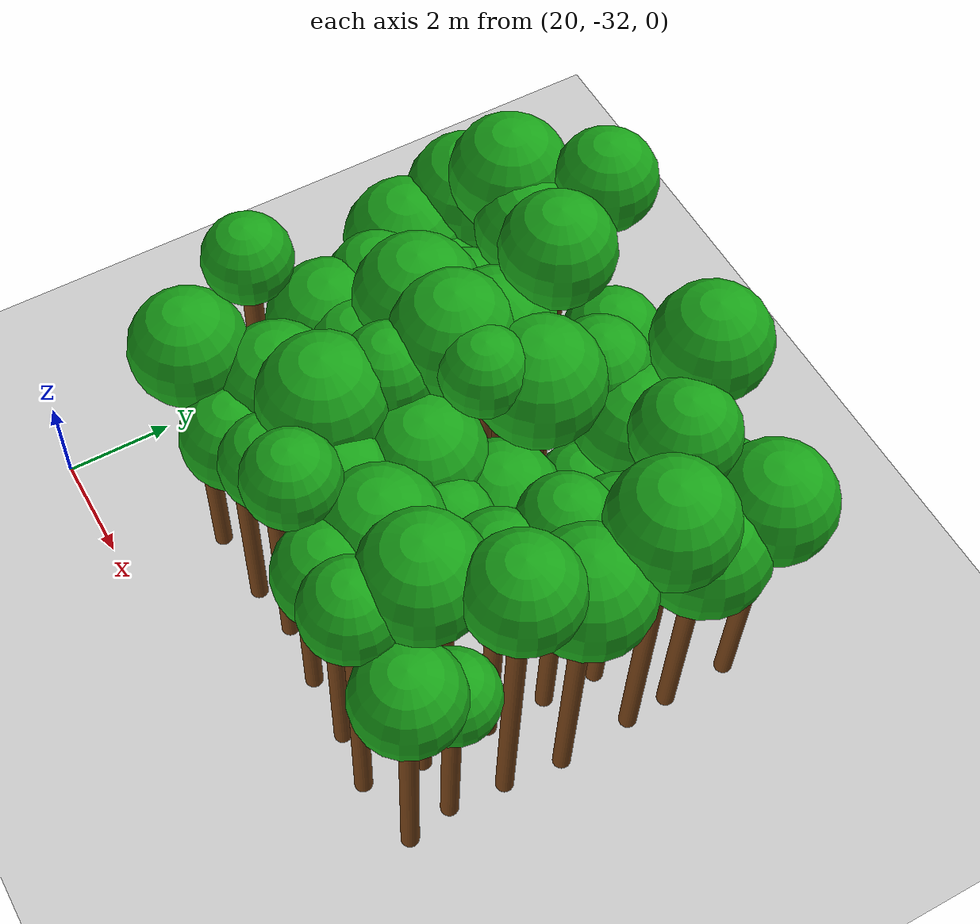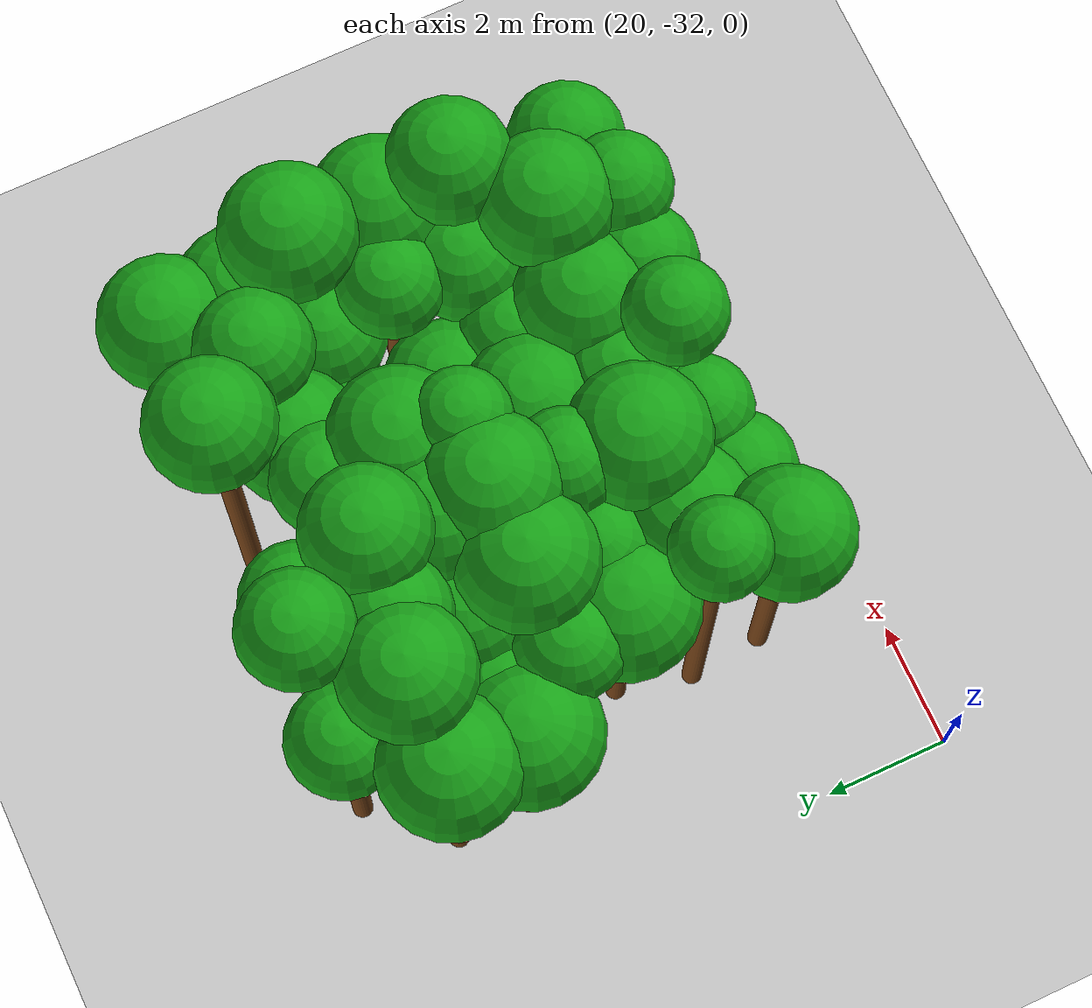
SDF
<sdf version="1.6">
 <world name="forest_world">
  <include><uri>model://sun</uri></include>
  <include><uri>model://ground_plane</uri></include>
  <model name="tree_2566_trunk">
   <static>true</static>
   <pose>21.86 -25.69 2.24 0 0 0</pose>
   <link name="link">
    <collision name="collision">
     <geometry><cylinder><radius>0.16</radius><length>4.47</length></cylinder></geometry>
    </collision>
    <visual name="visual">
     <geometry><cylinder><radius>0.16</radius><length>4.47</length></cylinder></geometry>
     <material><ambient>0.35 0.20 0.05 1</ambient><diffuse>0.45 0.25 0.08 1</diffuse></material>
    </visual>
   </link>
  </model>
  <model name="tree_2566_leaf">
   <static>true</static>
   <pose>21.86 -25.69 5.13 0 0 0</pose>
   <link name="link">
    <collision name="collision"><geometry><sphere><radius>1.10</radius></sphere></geometry></collision>
    <visual name="visual">
     <geometry><sphere><radius>1.10</radius></sphere></geometry>
     <material><ambient>0.05 0.45 0.05 1</ambient><diffuse>0.10 0.65 0.10 1</diffuse></material>
    </visual>
   </link>
  </model>
  <model name="tree_2567_trunk">
   <static>true</static>
   <pose>21.81 -24.48 2.49 0 0 0</pose>
   <link name="link">
    <collision name="collision">
     <geometry><cylinder><radius>0.16</radius><length>4.98</length></cylinder></geometry>
    </collision>
    <visual name="visual">
     <geometry><cylinder><radius>0.16</radius><length>4.98</length></cylinder></geometry>
     <material><ambient>0.35 0.20 0.05 1</ambient><diffuse>0.45 0.25 0.08 1</diffuse></material>
    </visual>
   </link>
  </model>
  <model name="tree_2567_leaf">
   <static>true</static>
   <pose>21.81 -24.48 5.62 0 0 0</pose>
   <link name="link">
    <collision name="collision"><geometry><sphere><radius>1.07</radius></sphere></geometry></collision>
    <visual name="visual">
     <geometry><sphere><radius>1.07</radius></sphere></geometry>
     <material><ambient>0.05 0.45 0.05 1</ambient><diffuse>0.10 0.65 0.10 1</diffuse></material>
    </visual>
   </link>
  </model>
  <model name="tree_2617_trunk">
   <static>true</static>
   <pose>22.75 -30.09 2.72 0 0 0</pose>
   <link name="link">
    <collision name="collision">
     <geometry><cylinder><radius>0.16</radius><length>5.45</length></cylinder></geometry>
    </collision>
    <visual name="visual">
     <geometry><cylinder><radius>0.16</radius><length>5.45</length></cylinder></geometry>
     <material><ambient>0.35 0.20 0.05 1</ambient><diffuse>0.45 0.25 0.08 1</diffuse></material>
    </visual>
   </link>
  </model>
  <model name="tree_2617_leaf">
   <static>true</static>
   <pose>22.75 -30.09 6.03 0 0 0</pose>
   <link name="link">
    <collision name="collision"><geometry><sphere><radius>0.98</radius></sphere></geometry></collision>
    <visual name="visual">
     <geometry><sphere><radius>0.98</radius></sphere></geometry>
     <material><ambient>0.05 0.45 0.05 1</ambient><diffuse>0.10 0.65 0.10 1</diffuse></material>
    </visual>
   </link>
  </model>
  <model name="tree_2618_trunk">
   <static>true</static>
   <pose>22.64 -28.88 3.48 0 0 0</pose>
   <link name="link">
    <collision name="collision">
     <geometry><cylinder><radius>0.16</radius><length>6.97</length></cylinder></geometry>
    </collision>
    <visual name="visual">
     <geometry><cylinder><radius>0.16</radius><length>6.97</length></cylinder></geometry>
     <material><ambient>0.35 0.20 0.05 1</ambient><diffuse>0.45 0.25 0.08 1</diffuse></material>
    </visual>
   </link>
  </model>
  <model name="tree_2618_leaf">
   <static>true</static>
   <pose>22.64 -28.88 7.41 0 0 0</pose>
   <link name="link">
    <collision name="collision"><geometry><sphere><radius>0.73</radius></sphere></geometry></collision>
    <visual name="visual">
     <geometry><sphere><radius>0.73</radius></sphere></geometry>
     <material><ambient>0.05 0.45 0.05 1</ambient><diffuse>0.10 0.65 0.10 1</diffuse></material>
    </visual>
   </link>
  </model>
  <model name="tree_2619_trunk">
   <static>true</static>
   <pose>22.92 -27.68 2.32 0 0 0</pose>
   <link name="link">
    <collision name="collision">
     <geometry><cylinder><radius>0.16</radius><length>4.64</length></cylinder></geometry>
    </collision>
    <visual name="visual">
     <geometry><cylinder><radius>0.16</radius><length>4.64</length></cylinder></geometry>
     <material><ambient>0.35 0.20 0.05 1</ambient><diffuse>0.45 0.25 0.08 1</diffuse></material>
    </visual>
   </link>
  </model>
  <model name="tree_2619_leaf">
   <static>true</static>
   <pose>22.92 -27.68 5.30 0 0 0</pose>
   <link name="link">
    <collision name="collision"><geometry><sphere><radius>1.10</radius></sphere></geometry></collision>
    <visual name="visual">
     <geometry><sphere><radius>1.10</radius></sphere></geometry>
     <material><ambient>0.05 0.45 0.05 1</ambient><diffuse>0.10 0.65 0.10 1</diffuse></material>
    </visual>
   </link>
  </model>
  <model name="tree_2620_trunk">
   <static>true</static>
   <pose>22.70 -26.70 2.53 0 0 0</pose>
   <link name="link">
    <collision name="collision">
     <geometry><cylinder><radius>0.16</radius><length>5.06</length></cylinder></geometry>
    </collision>
    <visual name="visual">
     <geometry><cylinder><radius>0.16</radius><length>5.06</length></cylinder></geometry>
     <material><ambient>0.35 0.20 0.05 1</ambient><diffuse>0.45 0.25 0.08 1</diffuse></material>
    </visual>
   </link>
  </model>
  <model name="tree_2620_leaf">
   <static>true</static>
   <pose>22.70 -26.70 5.57 0 0 0</pose>
   <link name="link">
    <collision name="collision"><geometry><sphere><radius>0.85</radius></sphere></geometry></collision>
    <visual name="visual">
     <geometry><sphere><radius>0.85</radius></sphere></geometry>
     <material><ambient>0.05 0.45 0.05 1</ambient><diffuse>0.10 0.65 0.10 1</diffuse></material>
    </visual>
   </link>
  </model>
  <model name="tree_2621_trunk">
   <static>true</static>
   <pose>22.66 -25.67 2.16 0 0 0</pose>
   <link name="link">
    <collision name="collision">
     <geometry><cylinder><radius>0.16</radius><length>4.33</length></cylinder></geometry>
    </collision>
    <visual name="visual">
     <geometry><cylinder><radius>0.16</radius><length>4.33</length></cylinder></geometry>
     <material><ambient>0.35 0.20 0.05 1</ambient><diffuse>0.45 0.25 0.08 1</diffuse></material>
    </visual>
   </link>
  </model>
  <model name="tree_2621_leaf">
   <static>true</static>
   <pose>22.66 -25.67 4.90 0 0 0</pose>
   <link name="link">
    <collision name="collision"><geometry><sphere><radius>0.95</radius></sphere></geometry></collision>
    <visual name="visual">
     <geometry><sphere><radius>0.95</radius></sphere></geometry>
     <material><ambient>0.05 0.45 0.05 1</ambient><diffuse>0.10 0.65 0.10 1</diffuse></material>
    </visual>
   </link>
  </model>
  <model name="tree_2622_trunk">
   <static>true</static>
   <pose>22.92 -24.38 3.29 0 0 0</pose>
   <link name="link">
    <collision name="collision">
     <geometry><cylinder><radius>0.16</radius><length>6.59</length></cylinder></geometry>
    </collision>
    <visual name="visual">
     <geometry><cylinder><radius>0.16</radius><length>6.59</length></cylinder></geometry>
     <material><ambient>0.35 0.20 0.05 1</ambient><diffuse>0.45 0.25 0.08 1</diffuse></material>
    </visual>
   </link>
  </model>
  <model name="tree_2622_leaf">
   <static>true</static>
   <pose>22.92 -24.38 7.18 0 0 0</pose>
   <link name="link">
    <collision name="collision"><geometry><sphere><radius>0.99</radius></sphere></geometry></collision>
    <visual name="visual">
     <geometry><sphere><radius>0.99</radius></sphere></geometry>
     <material><ambient>0.05 0.45 0.05 1</ambient><diffuse>0.10 0.65 0.10 1</diffuse></material>
    </visual>
   </link>
  </model>
  <model name="tree_2623_trunk">
   <static>true</static>
   <pose>22.87 -23.31 2.30 0 0 0</pose>
   <link name="link">
    <collision name="collision">
     <geometry><cylinder><radius>0.16</radius><length>4.61</length></cylinder></geometry>
    </collision>
    <visual name="visual">
     <geometry><cylinder><radius>0.16</radius><length>4.61</length></cylinder></geometry>
     <material><ambient>0.35 0.20 0.05 1</ambient><diffuse>0.45 0.25 0.08 1</diffuse></material>
    </visual>
   </link>
  </model>
  <model name="tree_2623_leaf">
   <static>true</static>
   <pose>22.87 -23.31 5.12 0 0 0</pose>
   <link name="link">
    <collision name="collision"><geometry><sphere><radius>0.86</radius></sphere></geometry></collision>
    <visual name="visual">
     <geometry><sphere><radius>0.86</radius></sphere></geometry>
     <material><ambient>0.05 0.45 0.05 1</ambient><diffuse>0.10 0.65 0.10 1</diffuse></material>
    </visual>
   </link>
  </model>
  <model name="tree_2672_trunk">
   <static>true</static>
   <pose>24.08 -30.00 2.32 0 0 0</pose>
   <link name="link">
    <collision name="collision">
     <geometry><cylinder><radius>0.16</radius><length>4.63</length></cylinder></geometry>
    </collision>
    <visual name="visual">
     <geometry><cylinder><radius>0.16</radius><length>4.63</length></cylinder></geometry>
     <material><ambient>0.35 0.20 0.05 1</ambient><diffuse>0.45 0.25 0.08 1</diffuse></material>
    </visual>
   </link>
  </model>
  <model name="tree_2672_leaf">
   <static>true</static>
   <pose>24.08 -30.00 5.17 0 0 0</pose>
   <link name="link">
    <collision name="collision"><geometry><sphere><radius>0.90</radius></sphere></geometry></collision>
    <visual name="visual">
     <geometry><sphere><radius>0.90</radius></sphere></geometry>
     <material><ambient>0.05 0.45 0.05 1</ambient><diffuse>0.10 0.65 0.10 1</diffuse></material>
    </visual>
   </link>
  </model>
  <model name="tree_2673_trunk">
   <static>true</static>
   <pose>23.75 -29.03 2.49 0 0 0</pose>
   <link name="link">
    <collision name="collision">
     <geometry><cylinder><radius>0.16</radius><length>4.98</length></cylinder></geometry>
    </collision>
    <visual name="visual">
     <geometry><cylinder><radius>0.16</radius><length>4.98</length></cylinder></geometry>
     <material><ambient>0.35 0.20 0.05 1</ambient><diffuse>0.45 0.25 0.08 1</diffuse></material>
    </visual>
   </link>
  </model>
  <model name="tree_2673_leaf">
   <static>true</static>
   <pose>23.75 -29.03 5.59 0 0 0</pose>
   <link name="link">
    <collision name="collision"><geometry><sphere><radius>1.01</radius></sphere></geometry></collision>
    <visual name="visual">
     <geometry><sphere><radius>1.01</radius></sphere></geometry>
     <material><ambient>0.05 0.45 0.05 1</ambient><diffuse>0.10 0.65 0.10 1</diffuse></material>
    </visual>
   </link>
  </model>
  <model name="tree_2674_trunk">
   <static>true</static>
   <pose>23.80 -27.64 2.58 0 0 0</pose>
   <link name="link">
    <collision name="collision">
     <geometry><cylinder><radius>0.16</radius><length>5.15</length></cylinder></geometry>
    </collision>
    <visual name="visual">
     <geometry><cylinder><radius>0.16</radius><length>5.15</length></cylinder></geometry>
     <material><ambient>0.35 0.20 0.05 1</ambient><diffuse>0.45 0.25 0.08 1</diffuse></material>
    </visual>
   </link>
  </model>
  <model name="tree_2674_leaf">
   <static>true</static>
   <pose>23.80 -27.64 5.64 0 0 0</pose>
   <link name="link">
    <collision name="collision"><geometry><sphere><radius>0.82</radius></sphere></geometry></collision>
    <visual name="visual">
     <geometry><sphere><radius>0.82</radius></sphere></geometry>
     <material><ambient>0.05 0.45 0.05 1</ambient><diffuse>0.10 0.65 0.10 1</diffuse></material>
    </visual>
   </link>
  </model>
  <model name="tree_2675_trunk">
   <static>true</static>
   <pose>23.86 -26.57 2.87 0 0 0</pose>
   <link name="link">
    <collision name="collision">
     <geometry><cylinder><radius>0.16</radius><length>5.74</length></cylinder></geometry>
    </collision>
    <visual name="visual">
     <geometry><cylinder><radius>0.16</radius><length>5.74</length></cylinder></geometry>
     <material><ambient>0.35 0.20 0.05 1</ambient><diffuse>0.45 0.25 0.08 1</diffuse></material>
    </visual>
   </link>
  </model>
  <model name="tree_2675_leaf">
   <static>true</static>
   <pose>23.86 -26.57 6.38 0 0 0</pose>
   <link name="link">
    <collision name="collision"><geometry><sphere><radius>1.06</radius></sphere></geometry></collision>
    <visual name="visual">
     <geometry><sphere><radius>1.06</radius></sphere></geometry>
     <material><ambient>0.05 0.45 0.05 1</ambient><diffuse>0.10 0.65 0.10 1</diffuse></material>
    </visual>
   </link>
  </model>
  <model name="tree_2676_trunk">
   <static>true</static>
   <pose>23.81 -25.62 2.43 0 0 0</pose>
   <link name="link">
    <collision name="collision">
     <geometry><cylinder><radius>0.16</radius><length>4.87</length></cylinder></geometry>
    </collision>
    <visual name="visual">
     <geometry><cylinder><radius>0.16</radius><length>4.87</length></cylinder></geometry>
     <material><ambient>0.35 0.20 0.05 1</ambient><diffuse>0.45 0.25 0.08 1</diffuse></material>
    </visual>
   </link>
  </model>
  <model name="tree_2676_leaf">
   <static>true</static>
   <pose>23.81 -25.62 5.46 0 0 0</pose>
   <link name="link">
    <collision name="collision"><geometry><sphere><radius>0.99</radius></sphere></geometry></collision>
    <visual name="visual">
     <geometry><sphere><radius>0.99</radius></sphere></geometry>
     <material><ambient>0.05 0.45 0.05 1</ambient><diffuse>0.10 0.65 0.10 1</diffuse></material>
    </visual>
   </link>
  </model>
  <model name="tree_2677_trunk">
   <static>true</static>
   <pose>23.81 -24.54 3.18 0 0 0</pose>
   <link name="link">
    <collision name="collision">
     <geometry><cylinder><radius>0.16</radius><length>6.37</length></cylinder></geometry>
    </collision>
    <visual name="visual">
     <geometry><cylinder><radius>0.16</radius><length>6.37</length></cylinder></geometry>
     <material><ambient>0.35 0.20 0.05 1</ambient><diffuse>0.45 0.25 0.08 1</diffuse></material>
    </visual>
   </link>
  </model>
  <model name="tree_2677_leaf">
   <static>true</static>
   <pose>23.81 -24.54 6.89 0 0 0</pose>
   <link name="link">
    <collision name="collision"><geometry><sphere><radius>0.87</radius></sphere></geometry></collision>
    <visual name="visual">
     <geometry><sphere><radius>0.87</radius></sphere></geometry>
     <material><ambient>0.05 0.45 0.05 1</ambient><diffuse>0.10 0.65 0.10 1</diffuse></material>
    </visual>
   </link>
  </model>
  <model name="tree_2678_trunk">
   <static>true</static>
   <pose>23.99 -23.26 3.49 0 0 0</pose>
   <link name="link">
    <collision name="collision">
     <geometry><cylinder><radius>0.16</radius><length>6.98</length></cylinder></geometry>
    </collision>
    <visual name="visual">
     <geometry><cylinder><radius>0.16</radius><length>6.98</length></cylinder></geometry>
     <material><ambient>0.35 0.20 0.05 1</ambient><diffuse>0.45 0.25 0.08 1</diffuse></material>
    </visual>
   </link>
  </model>
  <model name="tree_2678_leaf">
   <static>true</static>
   <pose>23.99 -23.26 7.49 0 0 0</pose>
   <link name="link">
    <collision name="collision"><geometry><sphere><radius>0.85</radius></sphere></geometry></collision>
    <visual name="visual">
     <geometry><sphere><radius>0.85</radius></sphere></geometry>
     <material><ambient>0.05 0.45 0.05 1</ambient><diffuse>0.10 0.65 0.10 1</diffuse></material>
    </visual>
   </link>
  </model>
  <model name="tree_2727_trunk">
   <static>true</static>
   <pose>25.03 -29.84 2.56 0 0 0</pose>
   <link name="link">
    <collision name="collision">
     <geometry><cylinder><radius>0.16</radius><length>5.12</length></cylinder></geometry>
    </collision>
    <visual name="visual">
     <geometry><cylinder><radius>0.16</radius><length>5.12</length></cylinder></geometry>
     <material><ambient>0.35 0.20 0.05 1</ambient><diffuse>0.45 0.25 0.08 1</diffuse></material>
    </visual>
   </link>
  </model>
  <model name="tree_2727_leaf">
   <static>true</static>
   <pose>25.03 -29.84 5.60 0 0 0</pose>
   <link name="link">
    <collision name="collision"><geometry><sphere><radius>0.80</radius></sphere></geometry></collision>
    <visual name="visual">
     <geometry><sphere><radius>0.80</radius></sphere></geometry>
     <material><ambient>0.05 0.45 0.05 1</ambient><diffuse>0.10 0.65 0.10 1</diffuse></material>
    </visual>
   </link>
  </model>
  <model name="tree_2728_trunk">
   <static>true</static>
   <pose>24.83 -28.74 2.82 0 0 0</pose>
   <link name="link">
    <collision name="collision">
     <geometry><cylinder><radius>0.16</radius><length>5.64</length></cylinder></geometry>
    </collision>
    <visual name="visual">
     <geometry><cylinder><radius>0.16</radius><length>5.64</length></cylinder></geometry>
     <material><ambient>0.35 0.20 0.05 1</ambient><diffuse>0.45 0.25 0.08 1</diffuse></material>
    </visual>
   </link>
  </model>
  <model name="tree_2728_leaf">
   <static>true</static>
   <pose>24.83 -28.74 6.29 0 0 0</pose>
   <link name="link">
    <collision name="collision"><geometry><sphere><radius>1.08</radius></sphere></geometry></collision>
    <visual name="visual">
     <geometry><sphere><radius>1.08</radius></sphere></geometry>
     <material><ambient>0.05 0.45 0.05 1</ambient><diffuse>0.10 0.65 0.10 1</diffuse></material>
    </visual>
   </link>
  </model>
  <model name="tree_2729_trunk">
   <static>true</static>
   <pose>24.90 -27.65 2.97 0 0 0</pose>
   <link name="link">
    <collision name="collision">
     <geometry><cylinder><radius>0.16</radius><length>5.93</length></cylinder></geometry>
    </collision>
    <visual name="visual">
     <geometry><cylinder><radius>0.16</radius><length>5.93</length></cylinder></geometry>
     <material><ambient>0.35 0.20 0.05 1</ambient><diffuse>0.45 0.25 0.08 1</diffuse></material>
    </visual>
   </link>
  </model>
  <model name="tree_2729_leaf">
   <static>true</static>
   <pose>24.90 -27.65 6.40 0 0 0</pose>
   <link name="link">
    <collision name="collision"><geometry><sphere><radius>0.79</radius></sphere></geometry></collision>
    <visual name="visual">
     <geometry><sphere><radius>0.79</radius></sphere></geometry>
     <material><ambient>0.05 0.45 0.05 1</ambient><diffuse>0.10 0.65 0.10 1</diffuse></material>
    </visual>
   </link>
  </model>
  <model name="tree_2730_trunk">
   <static>true</static>
   <pose>24.97 -26.54 3.04 0 0 0</pose>
   <link name="link">
    <collision name="collision">
     <geometry><cylinder><radius>0.16</radius><length>6.08</length></cylinder></geometry>
    </collision>
    <visual name="visual">
     <geometry><cylinder><radius>0.16</radius><length>6.08</length></cylinder></geometry>
     <material><ambient>0.35 0.20 0.05 1</ambient><diffuse>0.45 0.25 0.08 1</diffuse></material>
    </visual>
   </link>
  </model>
  <model name="tree_2730_leaf">
   <static>true</static>
   <pose>24.97 -26.54 6.70 0 0 0</pose>
   <link name="link">
    <collision name="collision"><geometry><sphere><radius>1.04</radius></sphere></geometry></collision>
    <visual name="visual">
     <geometry><sphere><radius>1.04</radius></sphere></geometry>
     <material><ambient>0.05 0.45 0.05 1</ambient><diffuse>0.10 0.65 0.10 1</diffuse></material>
    </visual>
   </link>
  </model>
  <model name="tree_2731_trunk">
   <static>true</static>
   <pose>24.96 -25.76 2.89 0 0 0</pose>
   <link name="link">
    <collision name="collision">
     <geometry><cylinder><radius>0.16</radius><length>5.77</length></cylinder></geometry>
    </collision>
    <visual name="visual">
     <geometry><cylinder><radius>0.16</radius><length>5.77</length></cylinder></geometry>
     <material><ambient>0.35 0.20 0.05 1</ambient><diffuse>0.45 0.25 0.08 1</diffuse></material>
    </visual>
   </link>
  </model>
  <model name="tree_2731_leaf">
   <static>true</static>
   <pose>24.96 -25.76 6.36 0 0 0</pose>
   <link name="link">
    <collision name="collision"><geometry><sphere><radius>0.99</radius></sphere></geometry></collision>
    <visual name="visual">
     <geometry><sphere><radius>0.99</radius></sphere></geometry>
     <material><ambient>0.05 0.45 0.05 1</ambient><diffuse>0.10 0.65 0.10 1</diffuse></material>
    </visual>
   </link>
  </model>
  <model name="tree_2732_trunk">
   <static>true</static>
   <pose>24.84 -24.65 3.47 0 0 0</pose>
   <link name="link">
    <collision name="collision">
     <geometry><cylinder><radius>0.16</radius><length>6.94</length></cylinder></geometry>
    </collision>
    <visual name="visual">
     <geometry><cylinder><radius>0.16</radius><length>6.94</length></cylinder></geometry>
     <material><ambient>0.35 0.20 0.05 1</ambient><diffuse>0.45 0.25 0.08 1</diffuse></material>
    </visual>
   </link>
  </model>
  <model name="tree_2732_leaf">
   <static>true</static>
   <pose>24.84 -24.65 7.50 0 0 0</pose>
   <link name="link">
    <collision name="collision"><geometry><sphere><radius>0.94</radius></sphere></geometry></collision>
    <visual name="visual">
     <geometry><sphere><radius>0.94</radius></sphere></geometry>
     <material><ambient>0.05 0.45 0.05 1</ambient><diffuse>0.10 0.65 0.10 1</diffuse></material>
    </visual>
   </link>
  </model>
  <model name="tree_2733_trunk">
   <static>true</static>
   <pose>25.07 -23.54 2.11 0 0 0</pose>
   <link name="link">
    <collision name="collision">
     <geometry><cylinder><radius>0.16</radius><length>4.22</length></cylinder></geometry>
    </collision>
    <visual name="visual">
     <geometry><cylinder><radius>0.16</radius><length>4.22</length></cylinder></geometry>
     <material><ambient>0.35 0.20 0.05 1</ambient><diffuse>0.45 0.25 0.08 1</diffuse></material>
    </visual>
   </link>
  </model>
  <model name="tree_2733_leaf">
   <static>true</static>
   <pose>25.07 -23.54 4.75 0 0 0</pose>
   <link name="link">
    <collision name="collision"><geometry><sphere><radius>0.88</radius></sphere></geometry></collision>
    <visual name="visual">
     <geometry><sphere><radius>0.88</radius></sphere></geometry>
     <material><ambient>0.05 0.45 0.05 1</ambient><diffuse>0.10 0.65 0.10 1</diffuse></material>
    </visual>
   </link>
  </model>
  <model name="tree_2782_trunk">
   <static>true</static>
   <pose>26.15 -29.93 3.14 0 0 0</pose>
   <link name="link">
    <collision name="collision">
     <geometry><cylinder><radius>0.16</radius><length>6.29</length></cylinder></geometry>
    </collision>
    <visual name="visual">
     <geometry><cylinder><radius>0.16</radius><length>6.29</length></cylinder></geometry>
     <material><ambient>0.35 0.20 0.05 1</ambient><diffuse>0.45 0.25 0.08 1</diffuse></material>
    </visual>
   </link>
  </model>
  <model name="tree_2782_leaf">
   <static>true</static>
   <pose>26.15 -29.93 6.76 0 0 0</pose>
   <link name="link">
    <collision name="collision"><geometry><sphere><radius>0.78</radius></sphere></geometry></collision>
    <visual name="visual">
     <geometry><sphere><radius>0.78</radius></sphere></geometry>
     <material><ambient>0.05 0.45 0.05 1</ambient><diffuse>0.10 0.65 0.10 1</diffuse></material>
    </visual>
   </link>
  </model>
  <model name="tree_2783_trunk">
   <static>true</static>
   <pose>25.95 -29.05 2.48 0 0 0</pose>
   <link name="link">
    <collision name="collision">
     <geometry><cylinder><radius>0.16</radius><length>4.96</length></cylinder></geometry>
    </collision>
    <visual name="visual">
     <geometry><cylinder><radius>0.16</radius><length>4.96</length></cylinder></geometry>
     <material><ambient>0.35 0.20 0.05 1</ambient><diffuse>0.45 0.25 0.08 1</diffuse></material>
    </visual>
   </link>
  </model>
  <model name="tree_2783_leaf">
   <static>true</static>
   <pose>25.95 -29.05 5.56 0 0 0</pose>
   <link name="link">
    <collision name="collision"><geometry><sphere><radius>1.01</radius></sphere></geometry></collision>
    <visual name="visual">
     <geometry><sphere><radius>1.01</radius></sphere></geometry>
     <material><ambient>0.05 0.45 0.05 1</ambient><diffuse>0.10 0.65 0.10 1</diffuse></material>
    </visual>
   </link>
  </model>
  <model name="tree_2784_trunk">
   <static>true</static>
   <pose>26.11 -27.69 2.49 0 0 0</pose>
   <link name="link">
    <collision name="collision">
     <geometry><cylinder><radius>0.16</radius><length>4.99</length></cylinder></geometry>
    </collision>
    <visual name="visual">
     <geometry><cylinder><radius>0.16</radius><length>4.99</length></cylinder></geometry>
     <material><ambient>0.35 0.20 0.05 1</ambient><diffuse>0.45 0.25 0.08 1</diffuse></material>
    </visual>
   </link>
  </model>
  <model name="tree_2784_leaf">
   <static>true</static>
   <pose>26.11 -27.69 5.61 0 0 0</pose>
   <link name="link">
    <collision name="collision"><geometry><sphere><radius>1.03</radius></sphere></geometry></collision>
    <visual name="visual">
     <geometry><sphere><radius>1.03</radius></sphere></geometry>
     <material><ambient>0.05 0.45 0.05 1</ambient><diffuse>0.10 0.65 0.10 1</diffuse></material>
    </visual>
   </link>
  </model>
  <model name="tree_2785_trunk">
   <static>true</static>
   <pose>25.93 -26.55 3.24 0 0 0</pose>
   <link name="link">
    <collision name="collision">
     <geometry><cylinder><radius>0.16</radius><length>6.48</length></cylinder></geometry>
    </collision>
    <visual name="visual">
     <geometry><cylinder><radius>0.16</radius><length>6.48</length></cylinder></geometry>
     <material><ambient>0.35 0.20 0.05 1</ambient><diffuse>0.45 0.25 0.08 1</diffuse></material>
    </visual>
   </link>
  </model>
  <model name="tree_2785_leaf">
   <static>true</static>
   <pose>25.93 -26.55 6.92 0 0 0</pose>
   <link name="link">
    <collision name="collision"><geometry><sphere><radius>0.73</radius></sphere></geometry></collision>
    <visual name="visual">
     <geometry><sphere><radius>0.73</radius></sphere></geometry>
     <material><ambient>0.05 0.45 0.05 1</ambient><diffuse>0.10 0.65 0.10 1</diffuse></material>
    </visual>
   </link>
  </model>
  <model name="tree_2786_trunk">
   <static>true</static>
   <pose>26.17 -25.69 2.86 0 0 0</pose>
   <link name="link">
    <collision name="collision">
     <geometry><cylinder><radius>0.16</radius><length>5.71</length></cylinder></geometry>
    </collision>
    <visual name="visual">
     <geometry><cylinder><radius>0.16</radius><length>5.71</length></cylinder></geometry>
     <material><ambient>0.35 0.20 0.05 1</ambient><diffuse>0.45 0.25 0.08 1</diffuse></material>
    </visual>
   </link>
  </model>
  <model name="tree_2786_leaf">
   <static>true</static>
   <pose>26.17 -25.69 6.36 0 0 0</pose>
   <link name="link">
    <collision name="collision"><geometry><sphere><radius>1.07</radius></sphere></geometry></collision>
    <visual name="visual">
     <geometry><sphere><radius>1.07</radius></sphere></geometry>
     <material><ambient>0.05 0.45 0.05 1</ambient><diffuse>0.10 0.65 0.10 1</diffuse></material>
    </visual>
   </link>
  </model>
  <model name="tree_2787_trunk">
   <static>true</static>
   <pose>26.18 -24.58 2.74 0 0 0</pose>
   <link name="link">
    <collision name="collision">
     <geometry><cylinder><radius>0.16</radius><length>5.47</length></cylinder></geometry>
    </collision>
    <visual name="visual">
     <geometry><cylinder><radius>0.16</radius><length>5.47</length></cylinder></geometry>
     <material><ambient>0.35 0.20 0.05 1</ambient><diffuse>0.45 0.25 0.08 1</diffuse></material>
    </visual>
   </link>
  </model>
  <model name="tree_2787_leaf">
   <static>true</static>
   <pose>26.18 -24.58 5.98 0 0 0</pose>
   <link name="link">
    <collision name="collision"><geometry><sphere><radius>0.85</radius></sphere></geometry></collision>
    <visual name="visual">
     <geometry><sphere><radius>0.85</radius></sphere></geometry>
     <material><ambient>0.05 0.45 0.05 1</ambient><diffuse>0.10 0.65 0.10 1</diffuse></material>
    </visual>
   </link>
  </model>
  <model name="tree_2837_trunk">
   <static>true</static>
   <pose>27.34 -29.97 2.66 0 0 0</pose>
   <link name="link">
    <collision name="collision">
     <geometry><cylinder><radius>0.16</radius><length>5.31</length></cylinder></geometry>
    </collision>
    <visual name="visual">
     <geometry><cylinder><radius>0.16</radius><length>5.31</length></cylinder></geometry>
     <material><ambient>0.35 0.20 0.05 1</ambient><diffuse>0.45 0.25 0.08 1</diffuse></material>
    </visual>
   </link>
  </model>
  <model name="tree_2837_leaf">
   <static>true</static>
   <pose>27.34 -29.97 5.84 0 0 0</pose>
   <link name="link">
    <collision name="collision"><geometry><sphere><radius>0.88</radius></sphere></geometry></collision>
    <visual name="visual">
     <geometry><sphere><radius>0.88</radius></sphere></geometry>
     <material><ambient>0.05 0.45 0.05 1</ambient><diffuse>0.10 0.65 0.10 1</diffuse></material>
    </visual>
   </link>
  </model>
  <model name="tree_2838_trunk">
   <static>true</static>
   <pose>27.13 -28.98 2.66 0 0 0</pose>
   <link name="link">
    <collision name="collision">
     <geometry><cylinder><radius>0.16</radius><length>5.33</length></cylinder></geometry>
    </collision>
    <visual name="visual">
     <geometry><cylinder><radius>0.16</radius><length>5.33</length></cylinder></geometry>
     <material><ambient>0.35 0.20 0.05 1</ambient><diffuse>0.45 0.25 0.08 1</diffuse></material>
    </visual>
   </link>
  </model>
  <model name="tree_2838_leaf">
   <static>true</static>
   <pose>27.13 -28.98 5.95 0 0 0</pose>
   <link name="link">
    <collision name="collision"><geometry><sphere><radius>1.04</radius></sphere></geometry></collision>
    <visual name="visual">
     <geometry><sphere><radius>1.04</radius></sphere></geometry>
     <material><ambient>0.05 0.45 0.05 1</ambient><diffuse>0.10 0.65 0.10 1</diffuse></material>
    </visual>
   </link>
  </model>
  <model name="tree_2839_trunk">
   <static>true</static>
   <pose>27.25 -27.91 2.48 0 0 0</pose>
   <link name="link">
    <collision name="collision">
     <geometry><cylinder><radius>0.16</radius><length>4.97</length></cylinder></geometry>
    </collision>
    <visual name="visual">
     <geometry><cylinder><radius>0.16</radius><length>4.97</length></cylinder></geometry>
     <material><ambient>0.35 0.20 0.05 1</ambient><diffuse>0.45 0.25 0.08 1</diffuse></material>
    </visual>
   </link>
  </model>
  <model name="tree_2839_leaf">
   <static>true</static>
   <pose>27.25 -27.91 5.44 0 0 0</pose>
   <link name="link">
    <collision name="collision"><geometry><sphere><radius>0.79</radius></sphere></geometry></collision>
    <visual name="visual">
     <geometry><sphere><radius>0.79</radius></sphere></geometry>
     <material><ambient>0.05 0.45 0.05 1</ambient><diffuse>0.10 0.65 0.10 1</diffuse></material>
    </visual>
   </link>
  </model>
  <model name="tree_2840_trunk">
   <static>true</static>
   <pose>27.03 -26.82 2.15 0 0 0</pose>
   <link name="link">
    <collision name="collision">
     <geometry><cylinder><radius>0.16</radius><length>4.30</length></cylinder></geometry>
    </collision>
    <visual name="visual">
     <geometry><cylinder><radius>0.16</radius><length>4.30</length></cylinder></geometry>
     <material><ambient>0.35 0.20 0.05 1</ambient><diffuse>0.45 0.25 0.08 1</diffuse></material>
    </visual>
   </link>
  </model>
  <model name="tree_2840_leaf">
   <static>true</static>
   <pose>27.03 -26.82 4.91 0 0 0</pose>
   <link name="link">
    <collision name="collision"><geometry><sphere><radius>1.02</radius></sphere></geometry></collision>
    <visual name="visual">
     <geometry><sphere><radius>1.02</radius></sphere></geometry>
     <material><ambient>0.05 0.45 0.05 1</ambient><diffuse>0.10 0.65 0.10 1</diffuse></material>
    </visual>
   </link>
  </model>
  <model name="tree_2841_trunk">
   <static>true</static>
   <pose>27.28 -25.47 2.10 0 0 0</pose>
   <link name="link">
    <collision name="collision">
     <geometry><cylinder><radius>0.16</radius><length>4.20</length></cylinder></geometry>
    </collision>
    <visual name="visual">
     <geometry><cylinder><radius>0.16</radius><length>4.20</length></cylinder></geometry>
     <material><ambient>0.35 0.20 0.05 1</ambient><diffuse>0.45 0.25 0.08 1</diffuse></material>
    </visual>
   </link>
  </model>
  <model name="tree_2841_leaf">
   <static>true</static>
   <pose>27.28 -25.47 4.65 0 0 0</pose>
   <link name="link">
    <collision name="collision"><geometry><sphere><radius>0.76</radius></sphere></geometry></collision>
    <visual name="visual">
     <geometry><sphere><radius>0.76</radius></sphere></geometry>
     <material><ambient>0.05 0.45 0.05 1</ambient><diffuse>0.10 0.65 0.10 1</diffuse></material>
    </visual>
   </link>
  </model>
  <model name="tree_2842_trunk">
   <static>true</static>
   <pose>27.09 -24.44 2.46 0 0 0</pose>
   <link name="link">
    <collision name="collision">
     <geometry><cylinder><radius>0.16</radius><length>4.92</length></cylinder></geometry>
    </collision>
    <visual name="visual">
     <geometry><cylinder><radius>0.16</radius><length>4.92</length></cylinder></geometry>
     <material><ambient>0.35 0.20 0.05 1</ambient><diffuse>0.45 0.25 0.08 1</diffuse></material>
    </visual>
   </link>
  </model>
  <model name="tree_2842_leaf">
   <static>true</static>
   <pose>27.09 -24.44 5.51 0 0 0</pose>
   <link name="link">
    <collision name="collision"><geometry><sphere><radius>1.00</radius></sphere></geometry></collision>
    <visual name="visual">
     <geometry><sphere><radius>1.00</radius></sphere></geometry>
     <material><ambient>0.05 0.45 0.05 1</ambient><diffuse>0.10 0.65 0.10 1</diffuse></material>
    </visual>
   </link>
  </model>
  <model name="tree_2843_trunk">
   <static>true</static>
   <pose>27.23 -23.35 3.27 0 0 0</pose>
   <link name="link">
    <collision name="collision">
     <geometry><cylinder><radius>0.16</radius><length>6.54</length></cylinder></geometry>
    </collision>
    <visual name="visual">
     <geometry><cylinder><radius>0.16</radius><length>6.54</length></cylinder></geometry>
     <material><ambient>0.35 0.20 0.05 1</ambient><diffuse>0.45 0.25 0.08 1</diffuse></material>
    </visual>
   </link>
  </model>
  <model name="tree_2843_leaf">
   <static>true</static>
   <pose>27.23 -23.35 7.12 0 0 0</pose>
   <link name="link">
    <collision name="collision"><geometry><sphere><radius>0.96</radius></sphere></geometry></collision>
    <visual name="visual">
     <geometry><sphere><radius>0.96</radius></sphere></geometry>
     <material><ambient>0.05 0.45 0.05 1</ambient><diffuse>0.10 0.65 0.10 1</diffuse></material>
    </visual>
   </link>
  </model>
  <model name="tree_2892_trunk">
   <static>true</static>
   <pose>28.32 -30.08 2.96 0 0 0</pose>
   <link name="link">
    <collision name="collision">
     <geometry><cylinder><radius>0.16</radius><length>5.92</length></cylinder></geometry>
    </collision>
    <visual name="visual">
     <geometry><cylinder><radius>0.16</radius><length>5.92</length></cylinder></geometry>
     <material><ambient>0.35 0.20 0.05 1</ambient><diffuse>0.45 0.25 0.08 1</diffuse></material>
    </visual>
   </link>
  </model>
  <model name="tree_2892_leaf">
   <static>true</static>
   <pose>28.32 -30.08 6.41 0 0 0</pose>
   <link name="link">
    <collision name="collision"><geometry><sphere><radius>0.81</radius></sphere></geometry></collision>
    <visual name="visual">
     <geometry><sphere><radius>0.81</radius></sphere></geometry>
     <material><ambient>0.05 0.45 0.05 1</ambient><diffuse>0.10 0.65 0.10 1</diffuse></material>
    </visual>
   </link>
  </model>
  <model name="tree_2893_trunk">
   <static>true</static>
   <pose>28.46 -29.00 3.03 0 0 0</pose>
   <link name="link">
    <collision name="collision">
     <geometry><cylinder><radius>0.16</radius><length>6.05</length></cylinder></geometry>
    </collision>
    <visual name="visual">
     <geometry><cylinder><radius>0.16</radius><length>6.05</length></cylinder></geometry>
     <material><ambient>0.35 0.20 0.05 1</ambient><diffuse>0.45 0.25 0.08 1</diffuse></material>
    </visual>
   </link>
  </model>
  <model name="tree_2893_leaf">
   <static>true</static>
   <pose>28.46 -29.00 6.67 0 0 0</pose>
   <link name="link">
    <collision name="collision"><geometry><sphere><radius>1.02</radius></sphere></geometry></collision>
    <visual name="visual">
     <geometry><sphere><radius>1.02</radius></sphere></geometry>
     <material><ambient>0.05 0.45 0.05 1</ambient><diffuse>0.10 0.65 0.10 1</diffuse></material>
    </visual>
   </link>
  </model>
  <model name="tree_2894_trunk">
   <static>true</static>
   <pose>28.43 -27.69 2.63 0 0 0</pose>
   <link name="link">
    <collision name="collision">
     <geometry><cylinder><radius>0.16</radius><length>5.27</length></cylinder></geometry>
    </collision>
    <visual name="visual">
     <geometry><cylinder><radius>0.16</radius><length>5.27</length></cylinder></geometry>
     <material><ambient>0.35 0.20 0.05 1</ambient><diffuse>0.45 0.25 0.08 1</diffuse></material>
    </visual>
   </link>
  </model>
  <model name="tree_2894_leaf">
   <static>true</static>
   <pose>28.43 -27.69 5.80 0 0 0</pose>
   <link name="link">
    <collision name="collision"><geometry><sphere><radius>0.90</radius></sphere></geometry></collision>
    <visual name="visual">
     <geometry><sphere><radius>0.90</radius></sphere></geometry>
     <material><ambient>0.05 0.45 0.05 1</ambient><diffuse>0.10 0.65 0.10 1</diffuse></material>
    </visual>
   </link>
  </model>
  <model name="tree_2895_trunk">
   <static>true</static>
   <pose>28.43 -26.55 2.81 0 0 0</pose>
   <link name="link">
    <collision name="collision">
     <geometry><cylinder><radius>0.16</radius><length>5.62</length></cylinder></geometry>
    </collision>
    <visual name="visual">
     <geometry><cylinder><radius>0.16</radius><length>5.62</length></cylinder></geometry>
     <material><ambient>0.35 0.20 0.05 1</ambient><diffuse>0.45 0.25 0.08 1</diffuse></material>
    </visual>
   </link>
  </model>
  <model name="tree_2895_leaf">
   <static>true</static>
   <pose>28.43 -26.55 6.10 0 0 0</pose>
   <link name="link">
    <collision name="collision"><geometry><sphere><radius>0.80</radius></sphere></geometry></collision>
    <visual name="visual">
     <geometry><sphere><radius>0.80</radius></sphere></geometry>
     <material><ambient>0.05 0.45 0.05 1</ambient><diffuse>0.10 0.65 0.10 1</diffuse></material>
    </visual>
   </link>
  </model>
  <model name="tree_2896_trunk">
   <static>true</static>
   <pose>28.44 -25.52 2.32 0 0 0</pose>
   <link name="link">
    <collision name="collision">
     <geometry><cylinder><radius>0.16</radius><length>4.63</length></cylinder></geometry>
    </collision>
    <visual name="visual">
     <geometry><cylinder><radius>0.16</radius><length>4.63</length></cylinder></geometry>
     <material><ambient>0.35 0.20 0.05 1</ambient><diffuse>0.45 0.25 0.08 1</diffuse></material>
    </visual>
   </link>
  </model>
  <model name="tree_2896_leaf">
   <static>true</static>
   <pose>28.44 -25.52 5.16 0 0 0</pose>
   <link name="link">
    <collision name="collision"><geometry><sphere><radius>0.88</radius></sphere></geometry></collision>
    <visual name="visual">
     <geometry><sphere><radius>0.88</radius></sphere></geometry>
     <material><ambient>0.05 0.45 0.05 1</ambient><diffuse>0.10 0.65 0.10 1</diffuse></material>
    </visual>
   </link>
  </model>
  <model name="tree_2897_trunk">
   <static>true</static>
   <pose>28.17 -24.36 3.04 0 0 0</pose>
   <link name="link">
    <collision name="collision">
     <geometry><cylinder><radius>0.16</radius><length>6.07</length></cylinder></geometry>
    </collision>
    <visual name="visual">
     <geometry><cylinder><radius>0.16</radius><length>6.07</length></cylinder></geometry>
     <material><ambient>0.35 0.20 0.05 1</ambient><diffuse>0.45 0.25 0.08 1</diffuse></material>
    </visual>
   </link>
  </model>
  <model name="tree_2897_leaf">
   <static>true</static>
   <pose>28.17 -24.36 6.60 0 0 0</pose>
   <link name="link">
    <collision name="collision"><geometry><sphere><radius>0.88</radius></sphere></geometry></collision>
    <visual name="visual">
     <geometry><sphere><radius>0.88</radius></sphere></geometry>
     <material><ambient>0.05 0.45 0.05 1</ambient><diffuse>0.10 0.65 0.10 1</diffuse></material>
    </visual>
   </link>
  </model>
  <model name="tree_2898_trunk">
   <static>true</static>
   <pose>28.27 -23.46 2.12 0 0 0</pose>
   <link name="link">
    <collision name="collision">
     <geometry><cylinder><radius>0.16</radius><length>4.24</length></cylinder></geometry>
    </collision>
    <visual name="visual">
     <geometry><cylinder><radius>0.16</radius><length>4.24</length></cylinder></geometry>
     <material><ambient>0.35 0.20 0.05 1</ambient><diffuse>0.45 0.25 0.08 1</diffuse></material>
    </visual>
   </link>
  </model>
  <model name="tree_2898_leaf">
   <static>true</static>
   <pose>28.27 -23.46 4.70 0 0 0</pose>
   <link name="link">
    <collision name="collision"><geometry><sphere><radius>0.77</radius></sphere></geometry></collision>
    <visual name="visual">
     <geometry><sphere><radius>0.77</radius></sphere></geometry>
     <material><ambient>0.05 0.45 0.05 1</ambient><diffuse>0.10 0.65 0.10 1</diffuse></material>
    </visual>
   </link>
  </model>
  <model name="tree_2947_trunk">
   <static>true</static>
   <pose>29.57 -29.85 2.52 0 0 0</pose>
   <link name="link">
    <collision name="collision">
     <geometry><cylinder><radius>0.16</radius><length>5.05</length></cylinder></geometry>
    </collision>
    <visual name="visual">
     <geometry><cylinder><radius>0.16</radius><length>5.05</length></cylinder></geometry>
     <material><ambient>0.35 0.20 0.05 1</ambient><diffuse>0.45 0.25 0.08 1</diffuse></material>
    </visual>
   </link>
  </model>
  <model name="tree_2947_leaf">
   <static>true</static>
   <pose>29.57 -29.85 5.59 0 0 0</pose>
   <link name="link">
    <collision name="collision"><geometry><sphere><radius>0.90</radius></sphere></geometry></collision>
    <visual name="visual">
     <geometry><sphere><radius>0.90</radius></sphere></geometry>
     <material><ambient>0.05 0.45 0.05 1</ambient><diffuse>0.10 0.65 0.10 1</diffuse></material>
    </visual>
   </link>
  </model>
  <model name="tree_2948_trunk">
   <static>true</static>
   <pose>29.41 -29.00 2.01 0 0 0</pose>
   <link name="link">
    <collision name="collision">
     <geometry><cylinder><radius>0.16</radius><length>4.01</length></cylinder></geometry>
    </collision>
    <visual name="visual">
     <geometry><cylinder><radius>0.16</radius><length>4.01</length></cylinder></geometry>
     <material><ambient>0.35 0.20 0.05 1</ambient><diffuse>0.45 0.25 0.08 1</diffuse></material>
    </visual>
   </link>
  </model>
  <model name="tree_2948_leaf">
   <static>true</static>
   <pose>29.41 -29.00 4.47 0 0 0</pose>
   <link name="link">
    <collision name="collision"><geometry><sphere><radius>0.77</radius></sphere></geometry></collision>
    <visual name="visual">
     <geometry><sphere><radius>0.77</radius></sphere></geometry>
     <material><ambient>0.05 0.45 0.05 1</ambient><diffuse>0.10 0.65 0.10 1</diffuse></material>
    </visual>
   </link>
  </model>
  <model name="tree_2949_trunk">
   <static>true</static>
   <pose>29.48 -27.96 3.19 0 0 0</pose>
   <link name="link">
    <collision name="collision">
     <geometry><cylinder><radius>0.16</radius><length>6.39</length></cylinder></geometry>
    </collision>
    <visual name="visual">
     <geometry><cylinder><radius>0.16</radius><length>6.39</length></cylinder></geometry>
     <material><ambient>0.35 0.20 0.05 1</ambient><diffuse>0.45 0.25 0.08 1</diffuse></material>
    </visual>
   </link>
  </model>
  <model name="tree_2949_leaf">
   <static>true</static>
   <pose>29.48 -27.96 6.94 0 0 0</pose>
   <link name="link">
    <collision name="collision"><geometry><sphere><radius>0.93</radius></sphere></geometry></collision>
    <visual name="visual">
     <geometry><sphere><radius>0.93</radius></sphere></geometry>
     <material><ambient>0.05 0.45 0.05 1</ambient><diffuse>0.10 0.65 0.10 1</diffuse></material>
    </visual>
   </link>
  </model>
  <model name="tree_2950_trunk">
   <static>true</static>
   <pose>29.58 -26.88 2.77 0 0 0</pose>
   <link name="link">
    <collision name="collision">
     <geometry><cylinder><radius>0.16</radius><length>5.53</length></cylinder></geometry>
    </collision>
    <visual name="visual">
     <geometry><cylinder><radius>0.16</radius><length>5.53</length></cylinder></geometry>
     <material><ambient>0.35 0.20 0.05 1</ambient><diffuse>0.45 0.25 0.08 1</diffuse></material>
    </visual>
   </link>
  </model>
  <model name="tree_2950_leaf">
   <static>true</static>
   <pose>29.58 -26.88 6.16 0 0 0</pose>
   <link name="link">
    <collision name="collision"><geometry><sphere><radius>1.04</radius></sphere></geometry></collision>
    <visual name="visual">
     <geometry><sphere><radius>1.04</radius></sphere></geometry>
     <material><ambient>0.05 0.45 0.05 1</ambient><diffuse>0.10 0.65 0.10 1</diffuse></material>
    </visual>
   </link>
  </model>
  <model name="tree_2951_trunk">
   <static>true</static>
   <pose>29.48 -25.47 3.11 0 0 0</pose>
   <link name="link">
    <collision name="collision">
     <geometry><cylinder><radius>0.16</radius><length>6.21</length></cylinder></geometry>
    </collision>
    <visual name="visual">
     <geometry><cylinder><radius>0.16</radius><length>6.21</length></cylinder></geometry>
     <material><ambient>0.35 0.20 0.05 1</ambient><diffuse>0.45 0.25 0.08 1</diffuse></material>
    </visual>
   </link>
  </model>
  <model name="tree_2951_leaf">
   <static>true</static>
   <pose>29.48 -25.47 6.82 0 0 0</pose>
   <link name="link">
    <collision name="collision"><geometry><sphere><radius>1.02</radius></sphere></geometry></collision>
    <visual name="visual">
     <geometry><sphere><radius>1.02</radius></sphere></geometry>
     <material><ambient>0.05 0.45 0.05 1</ambient><diffuse>0.10 0.65 0.10 1</diffuse></material>
    </visual>
   </link>
  </model>
  <model name="tree_2952_trunk">
   <static>true</static>
   <pose>29.44 -24.66 2.31 0 0 0</pose>
   <link name="link">
    <collision name="collision">
     <geometry><cylinder><radius>0.16</radius><length>4.62</length></cylinder></geometry>
    </collision>
    <visual name="visual">
     <geometry><cylinder><radius>0.16</radius><length>4.62</length></cylinder></geometry>
     <material><ambient>0.35 0.20 0.05 1</ambient><diffuse>0.45 0.25 0.08 1</diffuse></material>
    </visual>
   </link>
  </model>
  <model name="tree_2952_leaf">
   <static>true</static>
   <pose>29.44 -24.66 5.27 0 0 0</pose>
   <link name="link">
    <collision name="collision"><geometry><sphere><radius>1.08</radius></sphere></geometry></collision>
    <visual name="visual">
     <geometry><sphere><radius>1.08</radius></sphere></geometry>
     <material><ambient>0.05 0.45 0.05 1</ambient><diffuse>0.10 0.65 0.10 1</diffuse></material>
    </visual>
   </link>
  </model>
  <model name="tree_2953_trunk">
   <static>true</static>
   <pose>29.40 -23.42 2.52 0 0 0</pose>
   <link name="link">
    <collision name="collision">
     <geometry><cylinder><radius>0.16</radius><length>5.03</length></cylinder></geometry>
    </collision>
    <visual name="visual">
     <geometry><cylinder><radius>0.16</radius><length>5.03</length></cylinder></geometry>
     <material><ambient>0.35 0.20 0.05 1</ambient><diffuse>0.45 0.25 0.08 1</diffuse></material>
    </visual>
   </link>
  </model>
  <model name="tree_2953_leaf">
   <static>true</static>
   <pose>29.40 -23.42 5.64 0 0 0</pose>
   <link name="link">
    <collision name="collision"><geometry><sphere><radius>1.01</radius></sphere></geometry></collision>
    <visual name="visual">
     <geometry><sphere><radius>1.01</radius></sphere></geometry>
     <material><ambient>0.05 0.45 0.05 1</ambient><diffuse>0.10 0.65 0.10 1</diffuse></material>
    </visual>
   </link>
  </model>
 </world>
</sdf>
